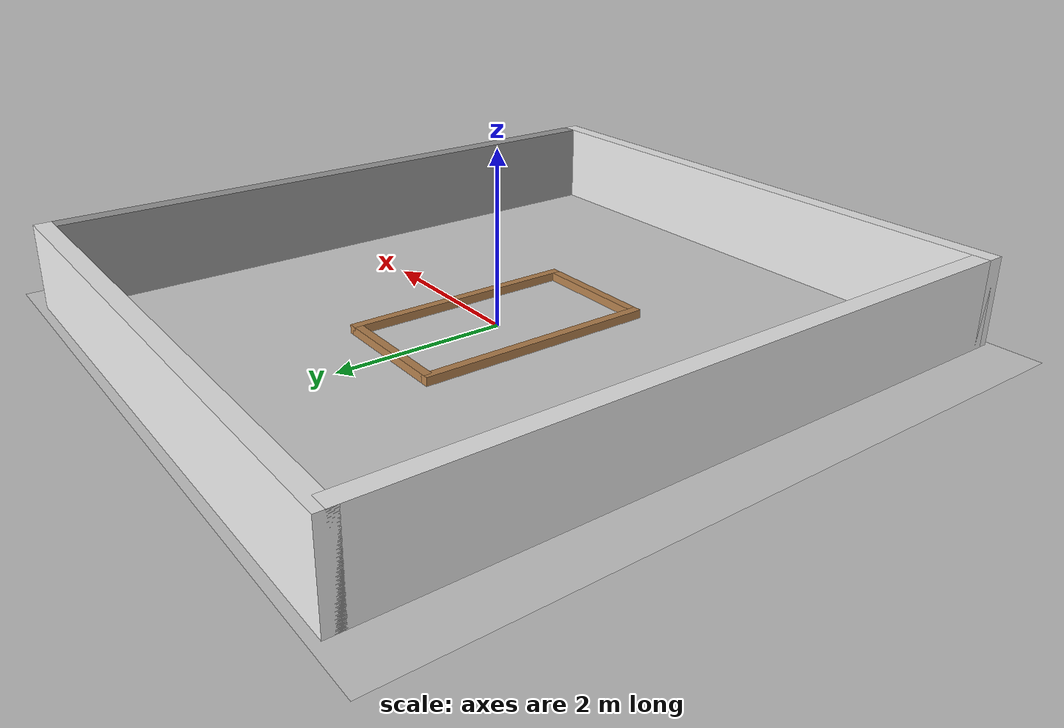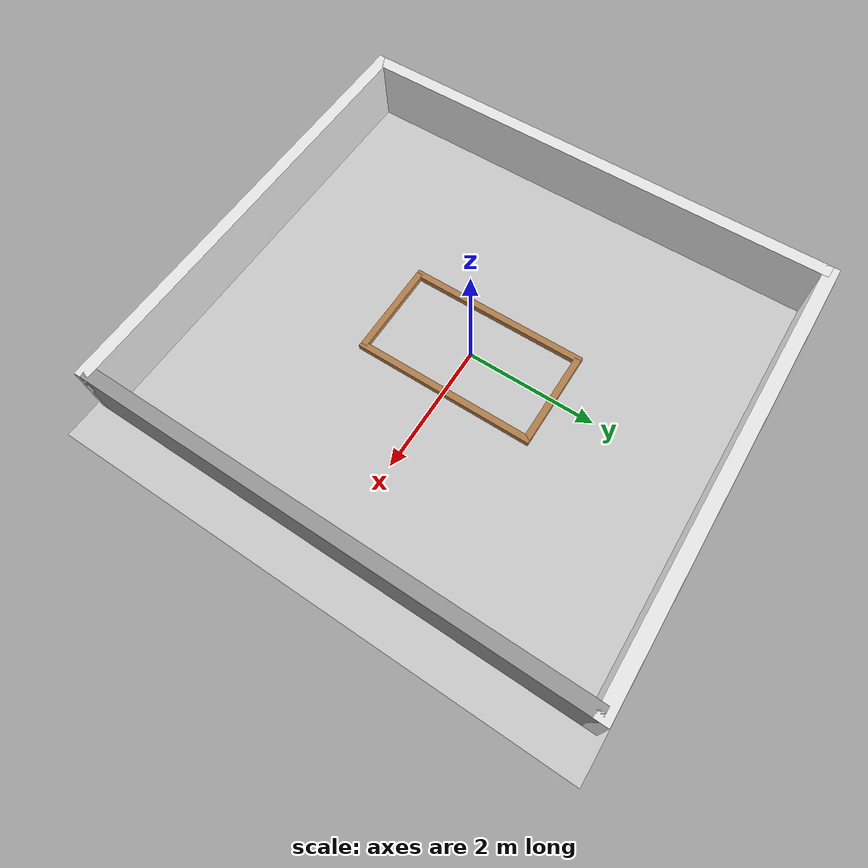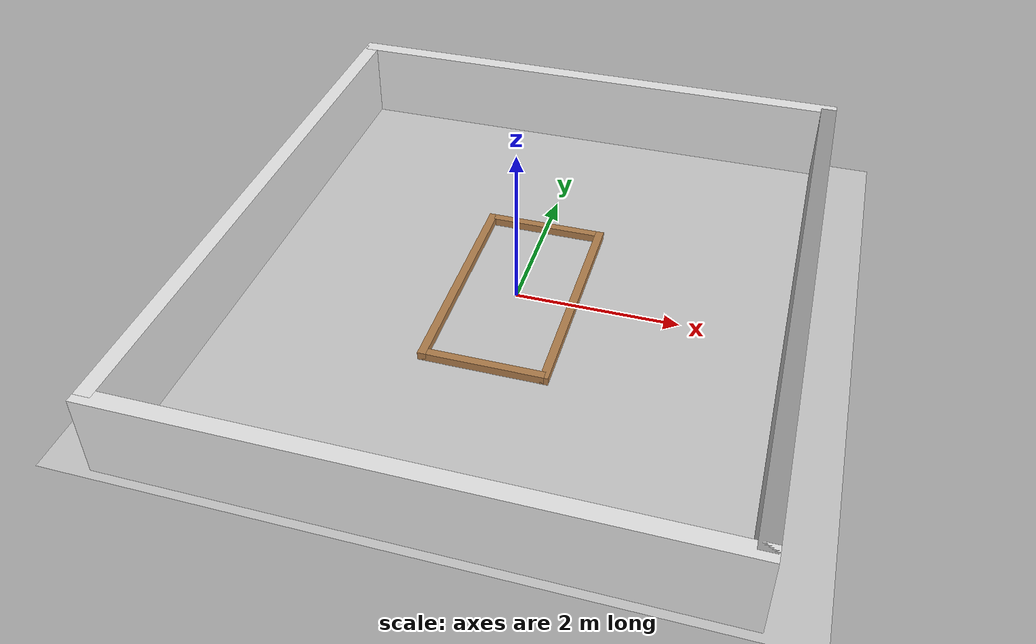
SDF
<?xml version="1.0"?>
<sdf version="1.4">
<world name="medium_track">

  <scene>
    <ambient>0.5 0.5 0.5 1.0</ambient>
    <shadows>0</shadows>
  </scene>

  <include>
    <uri>model://sun</uri>
    <pose>0.0 0.0 15.0 0 0 0</pose>
    <cast_shadows>false</cast_shadows>
    <attenuation>
      <constant>0.5</constant>
      <linear>0.01</linear>
      <quadratic>0.0</quadratic>
      <range>100</range>
    </attenuation>
  </include>

  <light type="point" name="Light 1">
         <pose>0 0 15 0 0 0</pose>
         <diffuse>.9 .9 .9 1</diffuse>
         <specular>.1 .1 .1 1</specular>
         <attenuation>
                <constant>0.4</constant>
                <linear>0.0</linear>
                <quadratic>0.02</quadratic>
                <range>50</range>
         </attenuation>
         <direction>0 0 -1</direction>
         <cast_shadows>false</cast_shadows>
  </light>

  <include>
    <uri>model://sim_world/models//medium_track_plane_grass</uri>
    <pose>0 0 0 0 0 0</pose>
    <name>racetrack</name>
  </include>
    <include>
      <name>right_wall</name>
      <uri>model://sim_world/models/grey_wall</uri>
      <static>true</static>
      <pose>3.32 0 0 0 0 0</pose>
    </include>
    <include>
      <name>left_wall</name>
      <uri>model://sim_world/models/white_wall</uri>
      <static>true</static>
      <pose>-3.32 0 0 0 0 0</pose>
    </include>
    <include>
      <name>upper_wall</name>
      <uri>model://sim_world/models/white_wall2</uri>
      <static>true</static>
      <pose>0 3.805 0 0 0 0</pose>
    </include>
    <include>
      <name>lower_wall</name>
      <uri>model://sim_world/models/white_wall2</uri>
      <static>true</static>
      <pose>0 -3.805 0 0 0 0</pose>
    </include>

    <include>
      <name>upper_wood</name>
      <uri>model://sim_world/models/wood_block_144_10_10cm</uri>
      <static>true</static>
      <pose>0 1.36 0 0 0 0</pose>
    </include>
    <include>
      <name>lower_wood</name>
      <uri>model://sim_world/models/wood_block_144_10_10cm</uri>
      <static>true</static>
      <pose>0 -1.36 0 0 0 0</pose>
    </include>
    <include>
      <name>right_wood</name>
      <uri>model://sim_world/models/wood_block_282_10_10cm</uri>
      <static>true</static>
      <pose>0.72 0 0 0 0 0</pose>
    </include>
    <include>
      <name>left_wood</name>
      <uri>model://sim_world/models/wood_block_282_10_10cm</uri>
      <static>true</static>
      <pose>-0.72 0 0 0 0 0</pose>
    </include>
</world>
</sdf>

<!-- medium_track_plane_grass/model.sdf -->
<sdf version="1.4">
<model name="medium_track">
  <static>true</static>
    <link name="link">
      <collision name="collision">
        <geometry>
          <plane>
            <normal>0 0 1</normal>
            <size>100 100</size>
          </plane>
        </geometry>
        <surface>
          <friction>
            <ode>
              <mu>100</mu>
              <mu2>50</mu2>
            </ode>
          </friction>
        </surface>
      </collision>
      <visual name="visual">
        <cast_shadows>false</cast_shadows>
        <geometry>
          <plane>
            <normal>0 0 1</normal>
            <size>8 8</size>
          </plane>
        </geometry>
        <material>
		  <script>
		    <uri>model://sim_world/meshes/medium_track_plane_grass/scripts</uri>
            <uri>model://sim_world/meshes/medium_track_plane_grass/textures</uri>
            <name>medium_track/Image</name>
		  </script>
        </material>
      </visual>
    </link>
  </model>
</sdf>

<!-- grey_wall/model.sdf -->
<sdf version="1.5">
  <model name="grey_wall">
    <static>true</static>
    <link name="link">
      <pose>0 0 0.5 0 0 0</pose>
      <collision name="collision">
        <geometry>
          <box>
            <size>0.2 7.61 1</size>
          </box>
        </geometry>
      </collision>
      <visual name="visual">
        <cast_shadows>false</cast_shadows>
        <geometry>
          <box>
            <size>0.2 7.61 1</size>
          </box>
        </geometry>
        <material>
          <script>
            <uri>model://sim_world/models/grey_wall/materials/scripts</uri>
            <uri>model://sim_world/models/grey_wall/materials/textures</uri>
            <name>vrc/grey_wall</name>
          </script>
        </material>
      </visual>
    </link>
  </model>
</sdf>

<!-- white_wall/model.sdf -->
<sdf version="1.5">
  <model name="white_wall">
    <static>true</static>
    <link name="link">
      <pose>0 0 0.5 0 0 0</pose>
      <collision name="collision">
        <geometry>
          <box>
            <size>0.2 7.61 1</size>
          </box>
        </geometry>
      </collision>
      <visual name="visual">
        <cast_shadows>false</cast_shadows>
        <geometry>
          <box>
            <size>0.2 7.61 1</size>
          </box>
        </geometry>
        <material>
          <script>
            <uri>model://white_wall/materials/scripts</uri>
            <uri>model://white_wall/materials/textures</uri>
            <name>vrc/white_wall</name>
          </script>
        </material>
      </visual>
    </link>
  </model>
</sdf>

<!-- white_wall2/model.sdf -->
<sdf version="1.5">
  <model name="white_wall">
    <static>true</static>
    <link name="link">
      <pose>0 0 0.5 0 0 0</pose>
      <collision name="collision">
        <geometry>
          <box>
            <size>6.84 0.2 1</size>
          </box>
        </geometry>
      </collision>
      <visual name="visual">
        <cast_shadows>false</cast_shadows>
        <geometry>
          <box>
            <size>6.84 0.2 1</size>
          </box>
        </geometry>
        <material>
          <script>
            <uri>model://white_wall/materials/scripts</uri>
            <uri>model://white_wall/materials/textures</uri>
            <name>vrc/white_wall</name>
          </script>
        </material>
      </visual>
    </link>
  </model>
</sdf>

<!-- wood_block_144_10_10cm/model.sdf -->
<sdf version="1.5">
  <model name="wood_block_144_10_10cm">
    <link name="link">
      <pose>0 0 0.05 0 0 0</pose>

      <inertial>
        <mass>1000</mass>
      </inertial>

      <collision name="collision">
        <geometry>
          <box>
            <size>1.44 0.1 0.1</size>
          </box>
        </geometry>
        <surface>
          <contact>
            <!-- Red Pine coefficients for longitudinal axis of the wood
                 according to:
                 http://www.fpl.fs.fed.us/documnts/fplgtr/fplgtr113/ch04.pdf -->

            <poissons_ratio>0.347</poissons_ratio>
            <elastic_modulus>8.8e+09</elastic_modulus>
            <ode>
              <kp>100000</kp>
              <kd>1</kd>
              <max_vel>1.0</max_vel>
              <min_depth>0.001</min_depth>
            </ode>
          </contact>
          <friction>
            <torsional>
              <coefficient>1.0</coefficient>
              <use_patch_radius>0</use_patch_radius>
              <surface_radius>0.05</surface_radius>
            </torsional>
          </friction>
        </surface>
      </collision>

      <visual name="visual">
        <geometry>
          <box>
            <size>1.44 0.1 0.1</size>
          </box>
        </geometry>
        <material>
          <script>
            <uri>file://media/materials/scripts/gazebo.material</uri>
            <name>Gazebo/Wood</name>
          </script>
        </material>
      </visual>

    </link>
  </model>
</sdf>

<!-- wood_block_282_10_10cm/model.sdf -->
<sdf version="1.5">
  <model name="wood_block_282_10_10cm">
    <link name="link">
      <pose>0 0 0.05 0 0 0</pose>

      <inertial>
        <mass>1000</mass>
      </inertial>

      <collision name="collision">
        <geometry>
          <box>
            <size>0.1 2.82 0.1</size>
          </box>
        </geometry>
        <surface>
          <contact>
            <!-- Red Pine coefficients for longitudinal axis of the wood
                 according to:
                 http://www.fpl.fs.fed.us/documnts/fplgtr/fplgtr113/ch04.pdf -->

            <poissons_ratio>0.347</poissons_ratio>
            <elastic_modulus>8.8e+09</elastic_modulus>
            <ode>
              <kp>100000</kp>
              <kd>1</kd>
              <max_vel>1.0</max_vel>
              <min_depth>0.001</min_depth>
            </ode>
          </contact>
          <friction>
            <torsional>
              <coefficient>1.0</coefficient>
              <use_patch_radius>0</use_patch_radius>
              <surface_radius>0.05</surface_radius>
            </torsional>
          </friction>
        </surface>
      </collision>

      <visual name="visual">
        <geometry>
          <box>
            <size>0.1 2.82 0.1</size>
          </box>
        </geometry>
        <material>
          <script>
            <uri>file://media/materials/scripts/gazebo.material</uri>
            <name>Gazebo/Wood</name>
          </script>
        </material>
      </visual>

    </link>
  </model>
</sdf>
